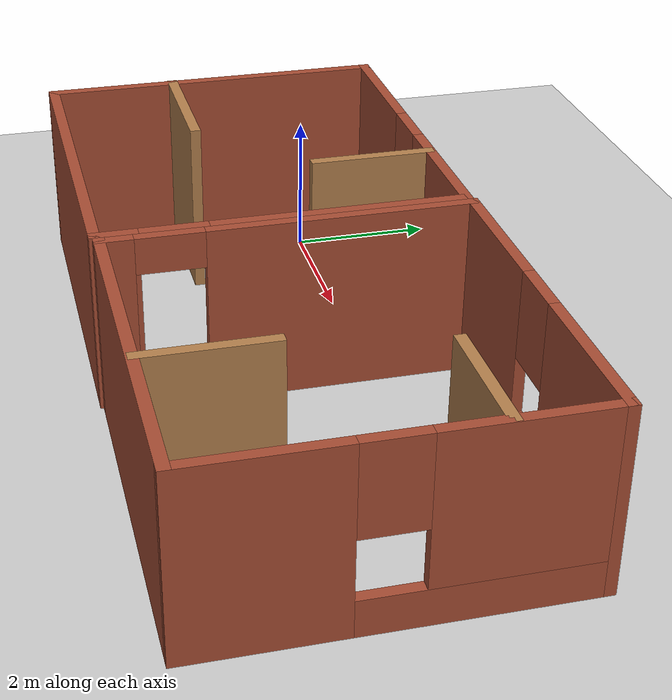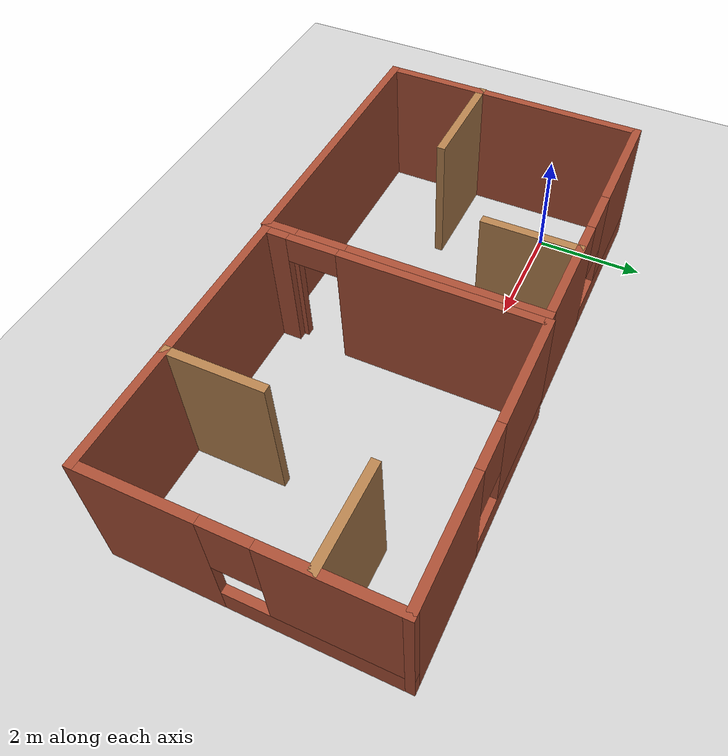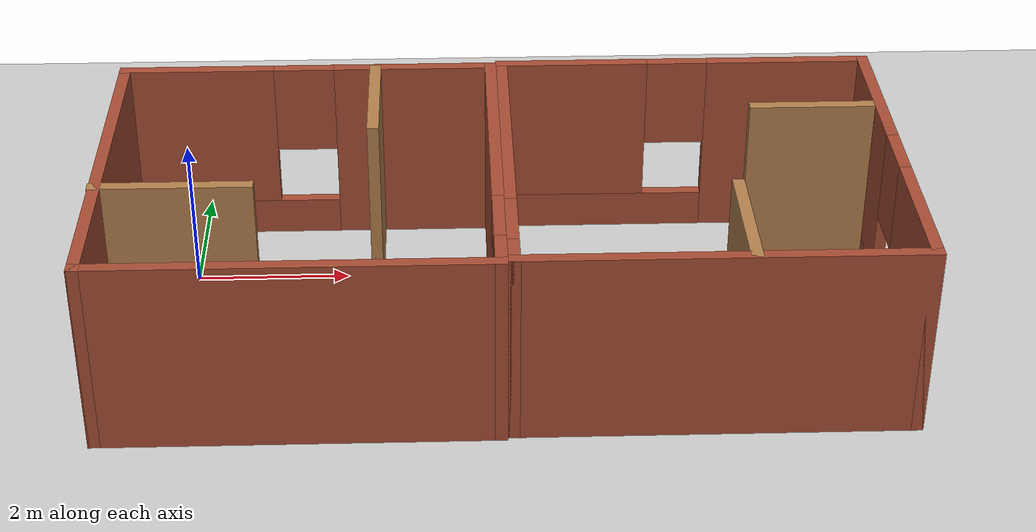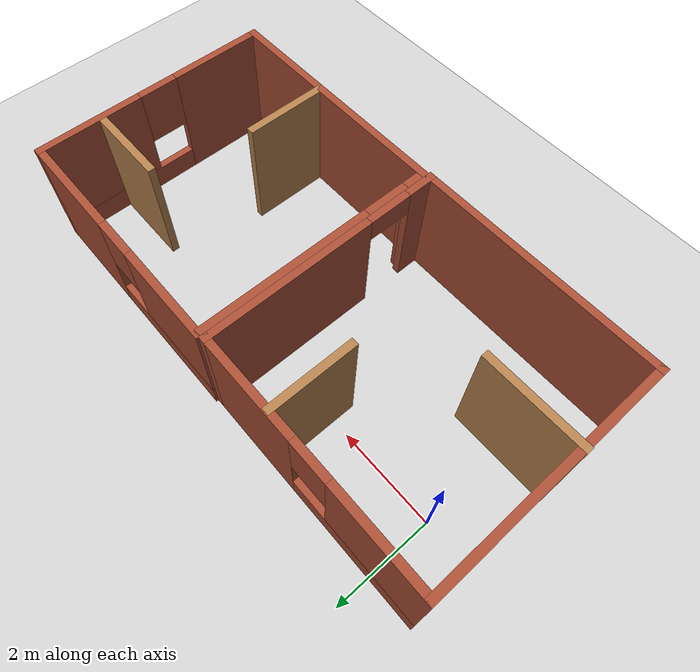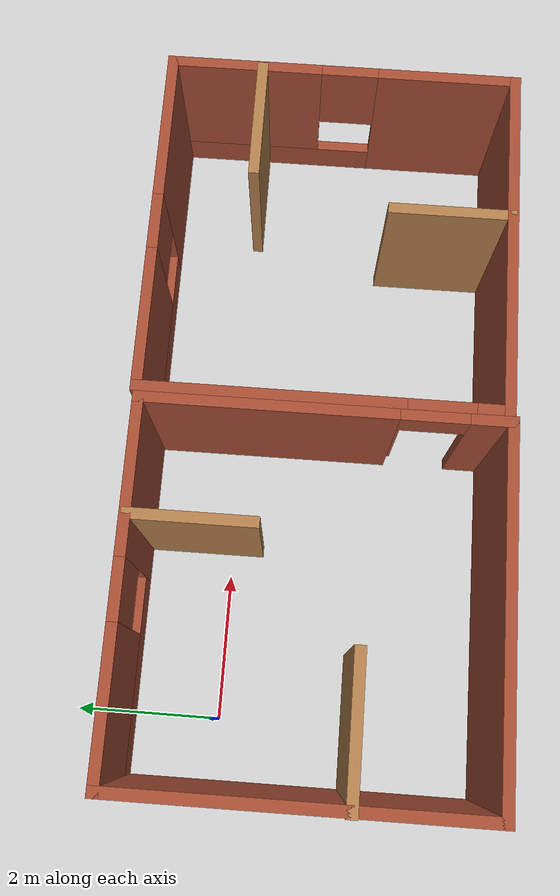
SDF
<sdf version="1.7">
 <world name="default">
  <light name="sun" type="directional">
   <pose>0 0 10 0 -0 0</pose>
   <diffuse>0.8 0.8 0.8 1</diffuse>
   <specular>0.2 0.2 0.2 1</specular>
   <attenuation>
    <range>1000</range>
    <constant>0.9</constant>
    <linear>0.01</linear>
    <quadratic>0.001</quadratic>
   </attenuation>
   <direction>-0.5 0.1 -0.9</direction>
   <spot><inner_angle>0</inner_angle><outer_angle>0</outer_angle><falloff>0</falloff></spot>
  </light>
  <model name="ground_plane">
   <static>1</static>
   <link name="link">
    <collision name="collision">
     <geometry><plane><normal>0 0 1</normal><size>100 100</size></plane></geometry>
     <surface>
      <contact><collide_bitmask>65535</collide_bitmask></contact>
      <friction><ode><mu>100</mu><mu2>50</mu2></ode></friction>
     </surface>
    </collision>
    <visual name="visual">
     <cast_shadows>0</cast_shadows>
     <geometry><plane><normal>0 0 1</normal><size>100 100</size></plane></geometry>
     <material>
      <script><uri>file://media/materials/scripts/gazebo.material</uri><name>Gazebo/Grey</name></script>
     </material>
    </visual>
   </link>
  </model>
  <gravity>0 0 -9.8</gravity>
  <magnetic_field>6e-06 2.3e-05 -4.2e-05</magnetic_field>
  <atmosphere type="adiabatic"/>
  <physics type="ode">
   <max_step_size>0.001</max_step_size>
   <real_time_factor>1</real_time_factor>
   <real_time_update_rate>1000</real_time_update_rate>
  </physics>
  <scene><ambient>0.4 0.4 0.4 1</ambient><background>0.7 0.7 0.7 1</background><shadows>1</shadows></scene>
  <audio><device>default</device></audio>
  <spherical_coordinates>
   <surface_model>EARTH_WGS84</surface_model>
   <latitude_deg>0</latitude_deg>
   <longitude_deg>0</longitude_deg>
   <elevation>0</elevation>
   <heading_deg>0</heading_deg>
  </spherical_coordinates>
  <model name="map1">
   <pose>1.51008 -1.17435 0 0 -0 0</pose>
   <link name="Wall_14">
    <collision name="Wall_14_Collision">
     <geometry><box><size>5 0.15 2.5</size></box></geometry>
     <pose>0 0 1.25 0 -0 0</pose>
    </collision>
    <visual name="Wall_14_Visual">
     <pose>0 0 1.25 0 -0 0</pose>
     <geometry><box><size>5 0.15 2.5</size></box></geometry>
     <material>
      <script><uri>file://media/materials/scripts/gazebo.material</uri><name>Gazebo/Bricks</name></script>
      <ambient>1 1 1 1</ambient>
     </material>
     <meta><layer>0</layer></meta>
    </visual>
    <pose>-2.41759 0 0 0 -0 -1.5708</pose>
   </link>
   <link name="Wall_16">
    <collision name="Wall_16_Collision">
     <geometry><box><size>5 0.15 2.5</size></box></geometry>
     <pose>0 0 1.25 0 -0 0</pose>
    </collision>
    <visual name="Wall_16_Visual">
     <pose>0 0 1.25 0 -0 0</pose>
     <geometry><box><size>5 0.15 2.5</size></box></geometry>
     <material>
      <script><uri>file://media/materials/scripts/gazebo.material</uri><name>Gazebo/Bricks</name></script>
      <ambient>1 1 1 1</ambient>
     </material>
     <meta><layer>0</layer></meta>
    </visual>
    <pose>0.007412 -2.425 0 0 -0 0</pose>
   </link>
   <link name="Wall_19">
    <collision name="Wall_19_Collision">
     <geometry><box><size>1.75 0.15 2.5</size></box></geometry>
     <pose>0 0 1.25 0 -0 0</pose>
    </collision>
    <visual name="Wall_19_Visual">
     <pose>0 0 1.25 0 -0 0</pose>
     <geometry><box><size>1.75 0.15 2.5</size></box></geometry>
     <material>
      <script><uri>file://media/materials/scripts/gazebo.material</uri><name>Gazebo/Wood</name></script>
      <ambient>1 1 1 1</ambient>
     </material>
     <meta><layer>0</layer></meta>
    </visual>
    <pose>0.900287 1.60105 0 0 -0 -1.5708</pose>
   </link>
   <link name="Wall_22">
    <collision name="Wall_22_Collision">
     <geometry><box><size>2 0.15 2.5</size></box></geometry>
     <pose>0 0 1.25 0 -0 0</pose>
    </collision>
    <visual name="Wall_22_Visual">
     <pose>0 0 1.25 0 -0 0</pose>
     <geometry><box><size>2 0.15 2.5</size></box></geometry>
     <material>
      <script><uri>file://media/materials/scripts/gazebo.material</uri><name>Gazebo/Wood</name></script>
      <ambient>1 1 1 1</ambient>
     </material>
     <meta><layer>0</layer></meta>
    </visual>
    <pose>-1.50741 -0.61425 0 0 -0 0</pose>
   </link>
   <link name="Wall_6">
    <pose>2.43241 0 0 0 -0 1.5708</pose>
    <visual name="Wall_6_Visual_0">
     <pose>-2.18549 0 1.25 0 -0 0</pose>
     <geometry><box><size>0.629025 0.15 2.5</size></box></geometry>
     <material>
      <script><uri>file://media/materials/scripts/gazebo.material</uri><name>Gazebo/Bricks</name></script>
      <ambient>1 1 1 1</ambient>
     </material>
     <meta><layer>0</layer></meta>
    </visual>
    <collision name="Wall_6_Collision_0">
     <geometry><box><size>0.629025 0.15 2.5</size></box></geometry>
     <pose>-2.18549 0 1.25 0 -0 0</pose>
    </collision>
    <visual name="Wall_6_Visual_1">
     <pose>0.764512 0 1.25 0 -0 0</pose>
     <geometry><box><size>3.47098 0.15 2.5</size></box></geometry>
     <material>
      <script><uri>file://media/materials/scripts/gazebo.material</uri><name>Gazebo/Bricks</name></script>
      <ambient>1 1 1 1</ambient>
     </material>
     <meta><layer>0</layer></meta>
    </visual>
    <collision name="Wall_6_Collision_1">
     <geometry><box><size>3.47098 0.15 2.5</size></box></geometry>
     <pose>0.764512 0 1.25 0 -0 0</pose>
    </collision>
    <visual name="Wall_6_Visual_2">
     <pose>-1.42098 0 2.25 0 -0 0</pose>
     <geometry><box><size>0.9 0.15 0.5</size></box></geometry>
     <material>
      <script><uri>file://media/materials/scripts/gazebo.material</uri><name>Gazebo/Bricks</name></script>
      <ambient>1 1 1 1</ambient>
     </material>
     <meta><layer>0</layer></meta>
    </visual>
    <collision name="Wall_6_Collision_2">
     <geometry><box><size>0.9 0.15 0.5</size></box></geometry>
     <pose>-1.42098 0 2.25 0 -0 0</pose>
    </collision>
   </link>
   <link name="Wall_7">
    <pose>0.007412 2.425 0 0 -0 3.14159</pose>
    <visual name="Wall_7_Visual_0">
     <pose>-1.42034 0 1.25 0 -0 0</pose>
     <geometry><box><size>2.15932 0.15 2.5</size></box></geometry>
     <material>
      <script><uri>file://media/materials/scripts/gazebo.material</uri><name>Gazebo/Bricks</name></script>
      <ambient>1 1 1 1</ambient>
     </material>
     <meta><layer>0</layer></meta>
    </visual>
    <collision name="Wall_7_Collision_0">
     <geometry><box><size>2.15932 0.15 2.5</size></box></geometry>
     <pose>-1.42034 0 1.25 0 -0 0</pose>
    </collision>
    <visual name="Wall_7_Visual_1">
     <pose>1.07966 0 0.25 0 -0 0</pose>
     <geometry><box><size>2.84068 0.15 0.5</size></box></geometry>
     <material>
      <script><uri>file://media/materials/scripts/gazebo.material</uri><name>Gazebo/Bricks</name></script>
      <ambient>1 1 1 1</ambient>
     </material>
     <meta><layer>0</layer></meta>
    </visual>
    <collision name="Wall_7_Collision_1">
     <geometry><box><size>2.84068 0.15 0.5</size></box></geometry>
     <pose>1.07966 0 0.25 0 -0 0</pose>
    </collision>
    <visual name="Wall_7_Visual_2">
     <pose>1.47966 0 1.5 0 -0 0</pose>
     <geometry><box><size>2.04067 0.15 2</size></box></geometry>
     <material>
      <script><uri>file://media/materials/scripts/gazebo.material</uri><name>Gazebo/Bricks</name></script>
      <ambient>1 1 1 1</ambient>
     </material>
     <meta><layer>0</layer></meta>
    </visual>
    <collision name="Wall_7_Collision_2">
     <geometry><box><size>2.04067 0.15 2</size></box></geometry>
     <pose>1.47966 0 1.5 0 -0 0</pose>
    </collision>
    <visual name="Wall_7_Visual_3">
     <pose>0.059325 0 1.9 0 -0 0</pose>
     <geometry><box><size>0.8 0.15 1.2</size></box></geometry>
     <material>
      <script><uri>file://media/materials/scripts/gazebo.material</uri><name>Gazebo/Bricks</name></script>
      <ambient>1 1 1 1</ambient>
     </material>
     <meta><layer>0</layer></meta>
    </visual>
    <collision name="Wall_7_Collision_3">
     <geometry><box><size>0.8 0.15 1.2</size></box></geometry>
     <pose>0.059325 0 1.9 0 -0 0</pose>
    </collision>
   </link>
   <static>1</static>
  </model>
  <model name="map2">
   <pose>3.15664 -1.13054 0 0 -0 0</pose>
   <link name="Wall_10">
    <collision name="Wall_10_Collision">
     <geometry><box><size>5 0.15 2.5</size></box></geometry>
     <pose>0 0 1.25 0 -0 0</pose>
    </collision>
    <visual name="Wall_10_Visual">
     <pose>0 0 1.25 0 -0 0</pose>
     <geometry><box><size>5 0.15 2.5</size></box></geometry>
     <material>
      <script><uri>file://media/materials/scripts/gazebo.material</uri><name>Gazebo/Bricks</name></script>
      <ambient>1 1 1 1</ambient>
     </material>
     <meta><layer>0</layer></meta>
    </visual>
    <pose>3.3575 -2.425 0 0 -0 0</pose>
   </link>
   <link name="Wall_13">
    <pose>5.7825 0 0 0 -0 1.5708</pose>
    <visual name="Wall_13_Visual_0">
     <pose>-1.49491 0 1.25 0 -0 0</pose>
     <geometry><box><size>2.01018 0.15 2.5</size></box></geometry>
     <material>
      <script><uri>file://media/materials/scripts/gazebo.material</uri><name>Gazebo/Bricks</name></script>
      <ambient>1 1 1 1</ambient>
     </material>
     <meta><layer>0</layer></meta>
    </visual>
    <collision name="Wall_13_Collision_0">
     <geometry><box><size>2.01018 0.15 2.5</size></box></geometry>
     <pose>-1.49491 0 1.25 0 -0 0</pose>
    </collision>
    <visual name="Wall_13_Visual_1">
     <pose>1.00509 0 0.25 0 -0 0</pose>
     <geometry><box><size>2.98982 0.15 0.5</size></box></geometry>
     <material>
      <script><uri>file://media/materials/scripts/gazebo.material</uri><name>Gazebo/Bricks</name></script>
      <ambient>1 1 1 1</ambient>
     </material>
     <meta><layer>0</layer></meta>
    </visual>
    <collision name="Wall_13_Collision_1">
     <geometry><box><size>2.98982 0.15 0.5</size></box></geometry>
     <pose>1.00509 0 0.25 0 -0 0</pose>
    </collision>
    <visual name="Wall_13_Visual_2">
     <pose>1.40509 0 1.5 0 -0 0</pose>
     <geometry><box><size>2.18982 0.15 2</size></box></geometry>
     <material>
      <script><uri>file://media/materials/scripts/gazebo.material</uri><name>Gazebo/Bricks</name></script>
      <ambient>1 1 1 1</ambient>
     </material>
     <meta><layer>0</layer></meta>
    </visual>
    <collision name="Wall_13_Collision_2">
     <geometry><box><size>2.18982 0.15 2</size></box></geometry>
     <pose>1.40509 0 1.5 0 -0 0</pose>
    </collision>
    <visual name="Wall_13_Visual_3">
     <pose>-0.089818 0 1.9 0 -0 0</pose>
     <geometry><box><size>0.8 0.15 1.2</size></box></geometry>
     <material>
      <script><uri>file://media/materials/scripts/gazebo.material</uri><name>Gazebo/Bricks</name></script>
      <ambient>1 1 1 1</ambient>
     </material>
     <meta><layer>0</layer></meta>
    </visual>
    <collision name="Wall_13_Collision_3">
     <geometry><box><size>0.8 0.15 1.2</size></box></geometry>
     <pose>-0.089818 0 1.9 0 -0 0</pose>
    </collision>
   </link>
   <link name="Wall_14">
    <pose>3.3575 2.425 0 0 -0 3.14159</pose>
    <visual name="Wall_14_Visual_0">
     <pose>-1.41196 0 1.25 0 -0 0</pose>
     <geometry><box><size>2.17608 0.15 2.5</size></box></geometry>
     <material>
      <script><uri>file://media/materials/scripts/gazebo.material</uri><name>Gazebo/Bricks</name></script>
      <ambient>1 1 1 1</ambient>
     </material>
     <meta><layer>0</layer></meta>
    </visual>
    <collision name="Wall_14_Collision_0">
     <geometry><box><size>2.17608 0.15 2.5</size></box></geometry>
     <pose>-1.41196 0 1.25 0 -0 0</pose>
    </collision>
    <visual name="Wall_14_Visual_1">
     <pose>1.08804 0 0.25 0 -0 0</pose>
     <geometry><box><size>2.82392 0.15 0.5</size></box></geometry>
     <material>
      <script><uri>file://media/materials/scripts/gazebo.material</uri><name>Gazebo/Bricks</name></script>
      <ambient>1 1 1 1</ambient>
     </material>
     <meta><layer>0</layer></meta>
    </visual>
    <collision name="Wall_14_Collision_1">
     <geometry><box><size>2.82392 0.15 0.5</size></box></geometry>
     <pose>1.08804 0 0.25 0 -0 0</pose>
    </collision>
    <visual name="Wall_14_Visual_2">
     <pose>1.48804 0 1.5 0 -0 0</pose>
     <geometry><box><size>2.02392 0.15 2</size></box></geometry>
     <material>
      <script><uri>file://media/materials/scripts/gazebo.material</uri><name>Gazebo/Bricks</name></script>
      <ambient>1 1 1 1</ambient>
     </material>
     <meta><layer>0</layer></meta>
    </visual>
    <collision name="Wall_14_Collision_2">
     <geometry><box><size>2.02392 0.15 2</size></box></geometry>
     <pose>1.48804 0 1.5 0 -0 0</pose>
    </collision>
    <visual name="Wall_14_Visual_3">
     <pose>0.07608 0 1.9 0 -0 0</pose>
     <geometry><box><size>0.8 0.15 1.2</size></box></geometry>
     <material>
      <script><uri>file://media/materials/scripts/gazebo.material</uri><name>Gazebo/Bricks</name></script>
      <ambient>1 1 1 1</ambient>
     </material>
     <meta><layer>0</layer></meta>
    </visual>
    <collision name="Wall_14_Collision_3">
     <geometry><box><size>0.8 0.15 1.2</size></box></geometry>
     <pose>0.07608 0 1.9 0 -0 0</pose>
    </collision>
   </link>
   <link name="Wall_15">
    <pose>0.932499 0 0 0 -0 -1.5708</pose>
    <visual name="Wall_15_Visual_0">
     <pose>-0.700071 0 1.25 0 -0 0</pose>
     <geometry><box><size>3.59986 0.15 2.5</size></box></geometry>
     <material>
      <script><uri>file://media/materials/scripts/gazebo.material</uri><name>Gazebo/Bricks</name></script>
      <ambient>1 1 1 1</ambient>
     </material>
     <meta><layer>0</layer></meta>
    </visual>
    <collision name="Wall_15_Collision_0">
     <geometry><box><size>3.59986 0.15 2.5</size></box></geometry>
     <pose>-0.700071 0 1.25 0 -0 0</pose>
    </collision>
    <visual name="Wall_15_Visual_1">
     <pose>2.24993 0 1.25 0 -0 0</pose>
     <geometry><box><size>0.500142 0.15 2.5</size></box></geometry>
     <material>
      <script><uri>file://media/materials/scripts/gazebo.material</uri><name>Gazebo/Bricks</name></script>
      <ambient>1 1 1 1</ambient>
     </material>
     <meta><layer>0</layer></meta>
    </visual>
    <collision name="Wall_15_Collision_1">
     <geometry><box><size>0.500142 0.15 2.5</size></box></geometry>
     <pose>2.24993 0 1.25 0 -0 0</pose>
    </collision>
    <visual name="Wall_15_Visual_2">
     <pose>1.54986 0 2.25 0 -0 0</pose>
     <geometry><box><size>0.9 0.15 0.5</size></box></geometry>
     <material>
      <script><uri>file://media/materials/scripts/gazebo.material</uri><name>Gazebo/Bricks</name></script>
      <ambient>1 1 1 1</ambient>
     </material>
     <meta><layer>0</layer></meta>
    </visual>
    <collision name="Wall_15_Collision_2">
     <geometry><box><size>0.9 0.15 0.5</size></box></geometry>
     <pose>1.54986 0 2.25 0 -0 0</pose>
    </collision>
   </link>
   <link name="Wall_17">
    <collision name="Wall_17_Collision">
     <geometry><box><size>1.75 0.15 2.5</size></box></geometry>
     <pose>0 0 1.25 0 -0 0</pose>
    </collision>
    <visual name="Wall_17_Visual">
     <pose>0 0 1.25 0 -0 0</pose>
     <geometry><box><size>1.75 0.15 2.5</size></box></geometry>
     <material>
      <script><uri>file://media/materials/scripts/gazebo.material</uri><name>Gazebo/Wood</name></script>
      <ambient>1 1 1 1</ambient>
     </material>
     <meta><layer>0</layer></meta>
    </visual>
    <pose>4.96787 1.14949 0 0 -0 3.14159</pose>
   </link>
   <link name="Wall_19">
    <collision name="Wall_19_Collision">
     <geometry><box><size>1.75 0.15 2.5</size></box></geometry>
     <pose>0 0 1.25 0 -0 0</pose>
    </collision>
    <visual name="Wall_19_Visual">
     <pose>0 0 1.25 0 -0 0</pose>
     <geometry><box><size>1.75 0.15 2.5</size></box></geometry>
     <material>
      <script><uri>file://media/materials/scripts/gazebo.material</uri><name>Gazebo/Wood</name></script>
      <ambient>1 1 1 1</ambient>
     </material>
     <meta><layer>0</layer></meta>
    </visual>
    <pose>3.70404 -1.601 0 0 -0 1.5708</pose>
   </link>
   <static>1</static>
  </model>
 </world>
</sdf>
